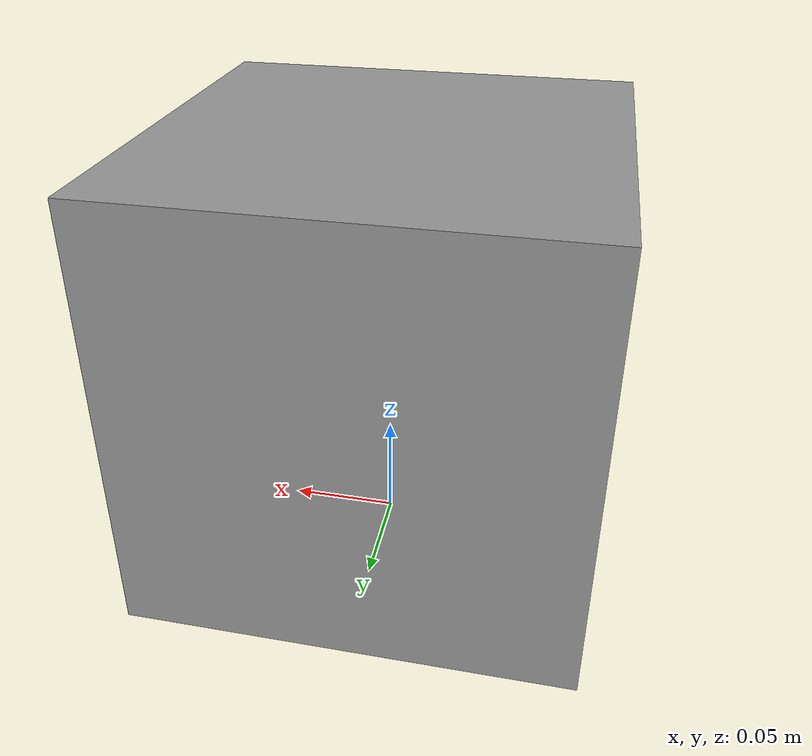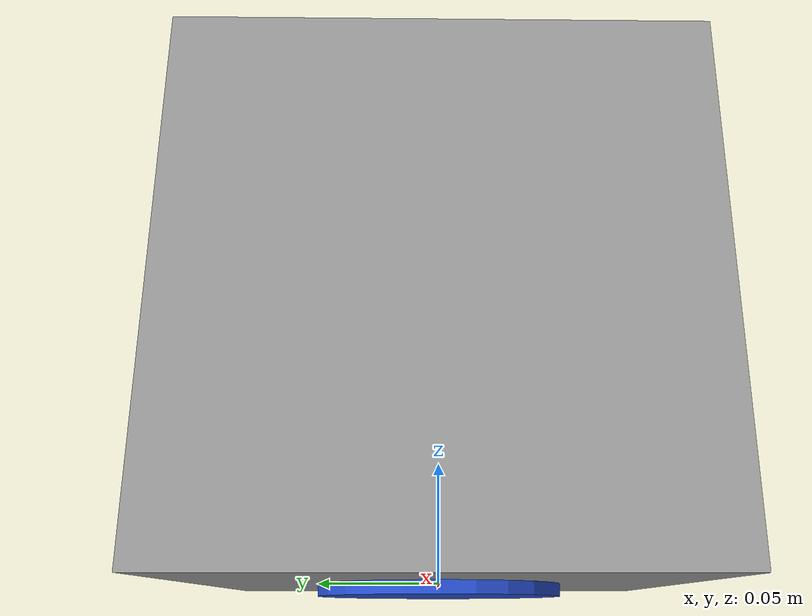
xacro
<?xml version="1.0" ?>
<robot xmlns:xacro="http://www.ros.org/wiki/xacro" name="small_box">

  <!-- Define a namespace variable -->
  <xacro:property name="ns" value="box3"/>

  <!-- Base link with the box -->
  <link name="${ns}_base_link">
    <visual>
      <geometry>
        <box size="0.2 0.2 0.2"/>
      </geometry>
      <material name="Gazebo/Grey"/>
    </visual>
    <collision>
      <geometry>
        <box size="0.2 0.2 0.2"/>
      </geometry>
    </collision>
    <inertial>
      <mass value="1.0"/>
      <inertia ixx="0.1" ixy="0.0" ixz="0.0" iyy="0.1" iyz="0.0" izz="0.1"/>
    </inertial>
  </link>

  <!-- Base footprint -->
  <link name="${ns}_base_footprint">
    <visual>
      <geometry>
        <cylinder radius="0.05" length="0.01"/>
      </geometry>
      <material name="Gazebo/Blue"/>
    </visual>
    <collision>
      <geometry>
        <cylinder radius="0.05" length="0.01"/>
      </geometry>
    </collision>
    <inertial>
      <mass value="0.5"/>
      <inertia ixx="0.01" ixy="0.0" ixz="0.0" iyy="0.01" iyz="0.0" izz="0.01"/>
    </inertial>
  </link>

  <!-- Fixed joint connecting base_link and base_footprint -->
  <joint name="${ns}_base_link_joint" type="fixed">
    <parent link="${ns}_base_footprint"/>
    <child link="${ns}_base_link"/>
    <origin xyz="0 0 0.1" rpy="0 0 0"/>
  </joint>

  <!-- Gazebo Plugin for Planar Movement -->
  <gazebo>
    <plugin name="${ns}_planar_move" filename="libgazebo_ros_planar_move.so">
      <body_name>${ns}_base_link</body_name>
    </plugin>
  </gazebo>

</robot>
